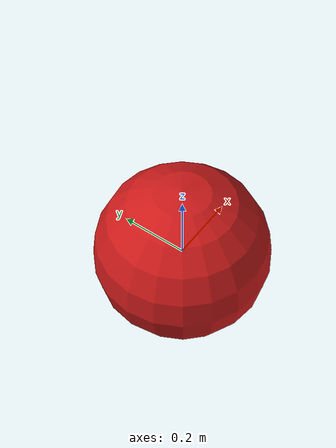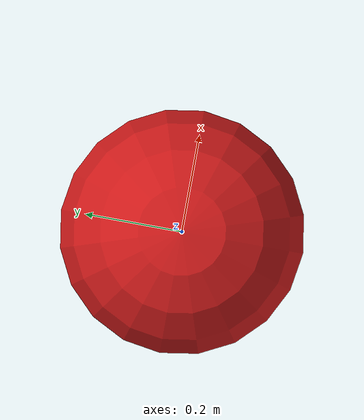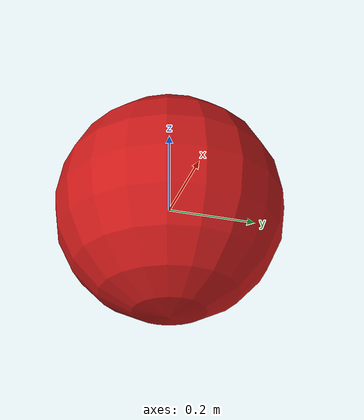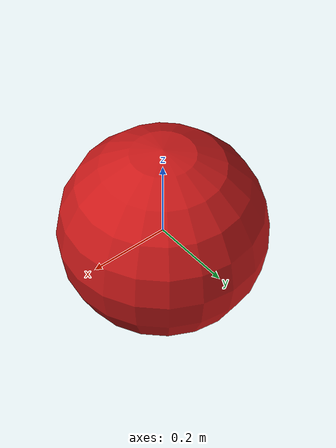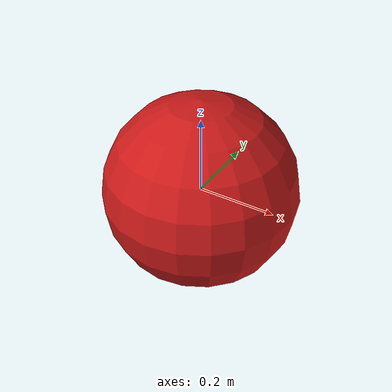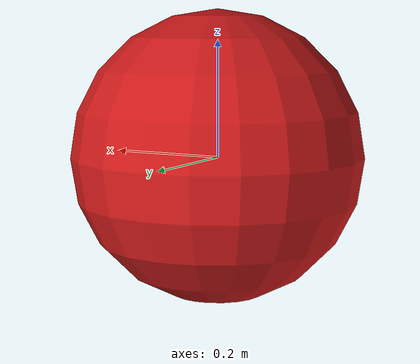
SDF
<?xml version="1.0" ?>
<sdf version="1.7">
  <model name="microplastic_sphere">
    <!-- Critical settings -->
    <static>false</static>
    <allow_auto_disable>false</allow_auto_disable>
    <pose>0 0 0.0025 0 0 0</pose>  <!-- Start at ground level (radius height) -->

    <link name="particle">
      <!-- Visual -->
      <visual name="visual">
        <geometry>
          <sphere><radius>0.25</radius></sphere>  <!-- 5mm diameter -->
        </geometry>
        <material>
          <ambient>0.8 0.1 0.1 0.9</ambient>
          <diffuse>0.8 0.1 0.1 0.9</diffuse>
        </material>
      </visual>

      <!-- Collision -->
      <collision name="collision">
        <geometry>
          <sphere><radius>0.0025</radius></sphere>
        </geometry>
        <surface>
          <contact>
            <ode>
              <min_depth>0.0001</min_depth>  <!-- Critical for small objects -->
            </ode>
          </contact>
          <friction>
            <ode>
              <mu>0.01</mu>  <!-- Low friction -->
            </ode>
          </friction>
        </surface>
      </collision>

      <!-- Physics - balanced for surface floating -->
      <inertial>
        <mass>0.001</mass>  <!-- 1mg - balanced mass for floating -->
        <inertia>
          <ixx>1e-8</ixx>
          <iyy>1e-8</iyy>
          <izz>1e-8</izz>
        </inertia>
      </inertial>
    </link>

  <!-- VRX Buoyancy Plugin -->
    <plugin name="vrx::PolyhedraBuoyancyDrag"
            filename="libPolyhedraBuoyancyDrag.so">
      <!-- Fluid properties -->
      <fluid_density>1025.0</fluid_density>  <!-- Seawater density kg/m³ -->
      <fluid_level>0.0</fluid_level>          <!-- Water surface level -->

      <!-- Drag coefficients - reduced for small particles -->
      <linear_drag>0.7</linear_drag>         <!-- Lower drag coefficient -->
      <angular_drag>0.1</angular_drag>        <!-- Lower angular drag -->

      <!-- Buoyancy object definition -->
      <buoyancy name="microplastic_buoyancy">
        <link_name>particle</link_name>
        <pose>0 0 0.0 0 0 0</pose>
        <geometry>
          <sphere>
            <radius>0.01</radius>             <!-- Larger buoyancy volume for floating -->
          </sphere>
        </geometry>
      </buoyancy>

      <!-- Wave field integration -->
      <wavefield>
        <topic>/vrx/wavefield/parameters</topic>
      </wavefield>
    </plugin>

  </model>
</sdf>
